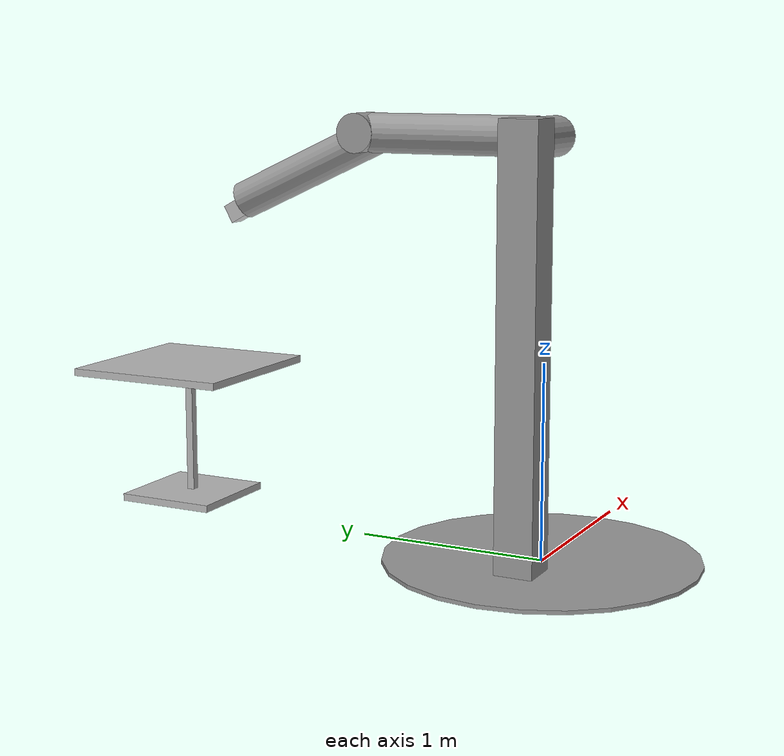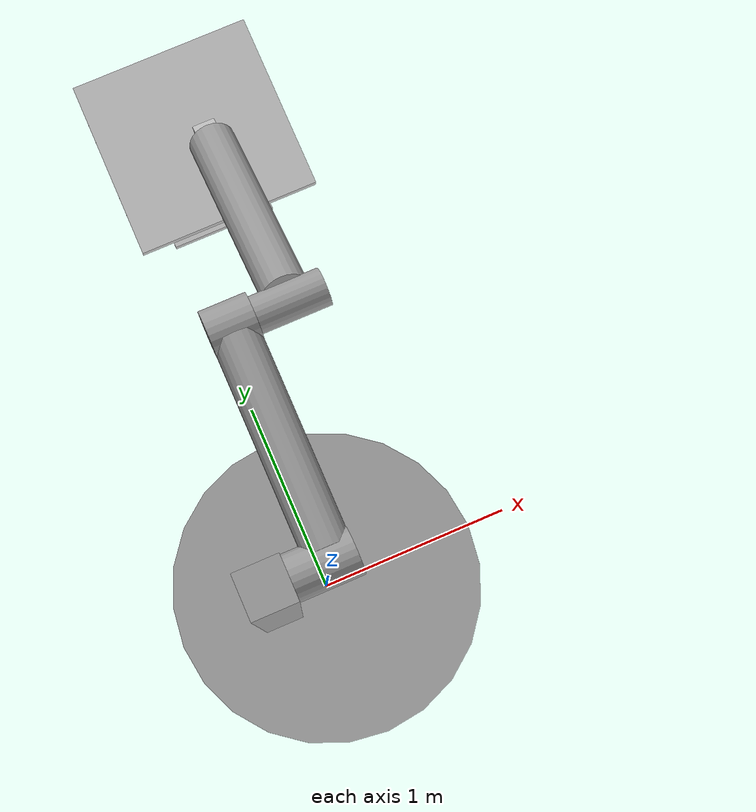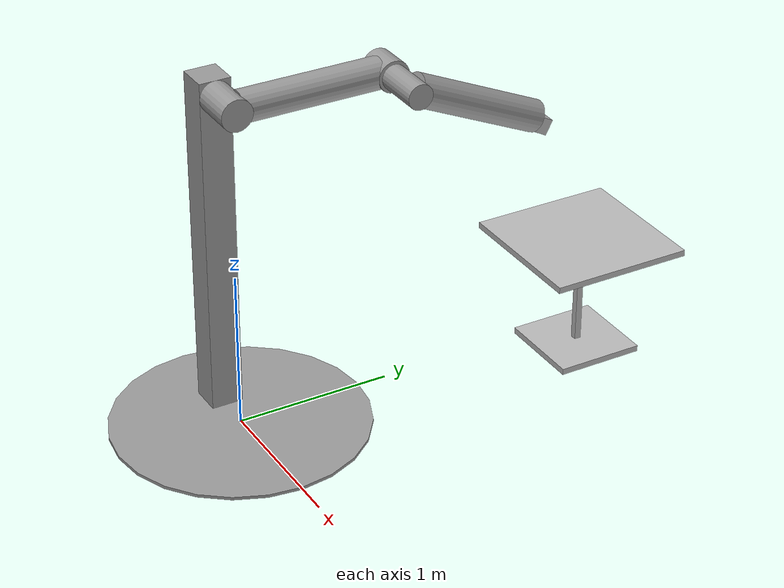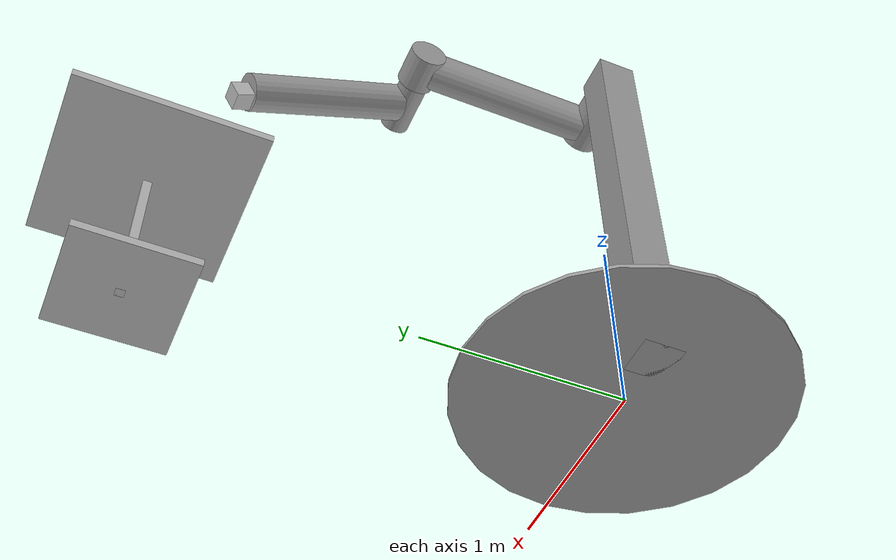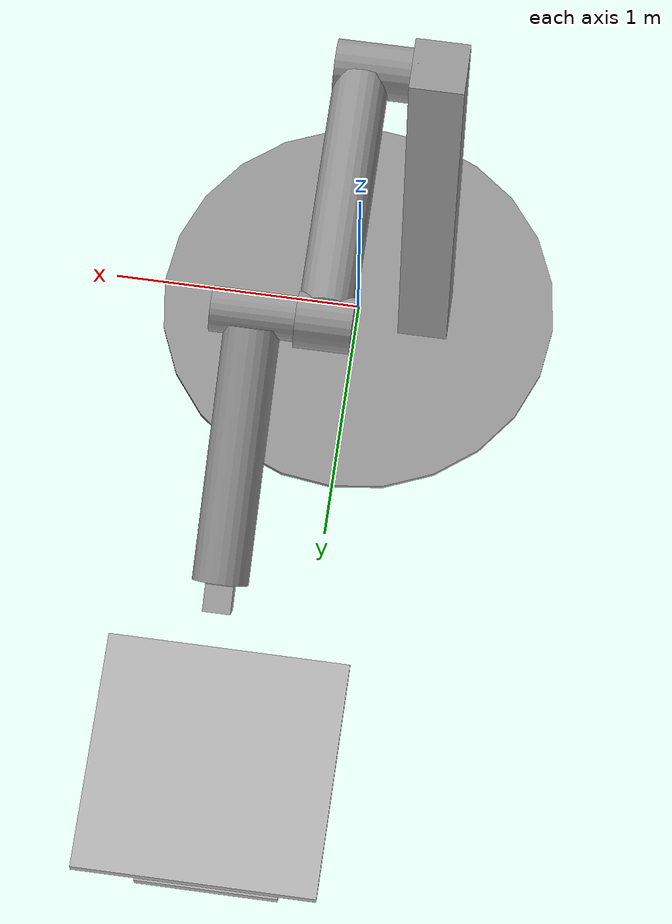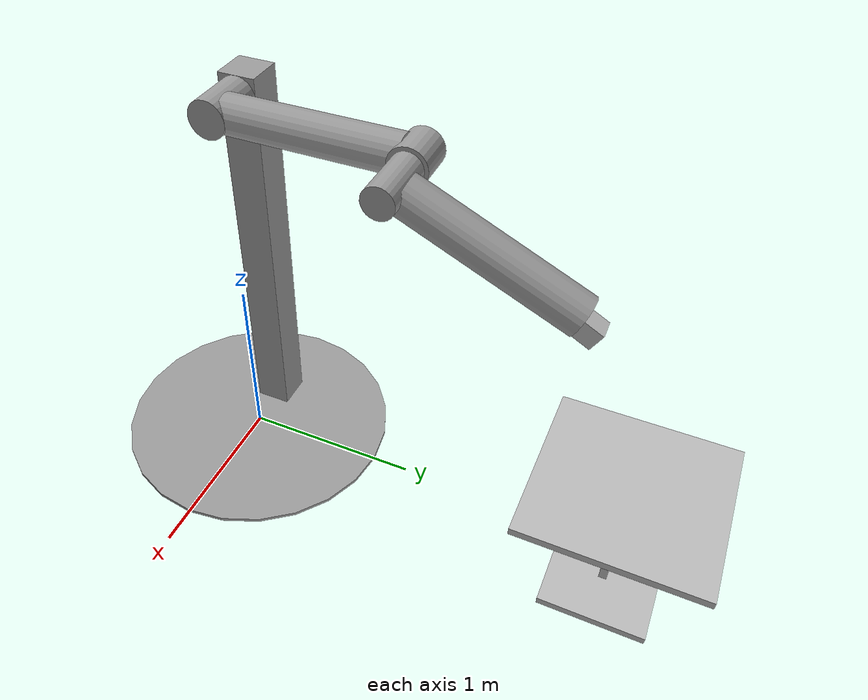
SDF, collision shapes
<?xml version="1.0" ?>
<sdf version="1.5">
  <model name="manipulation_platform">
    <link name="table">
      <pose>0.25 2.25 0 0 0 0</pose>
      <collision name="surface">
        <pose>0 0 0.755 0 0 0</pose>
        <geometry>
          <box>
            <size>0.913 0.913 0.04</size>
          </box>
        </geometry>
      </collision>

      <collision name="column">
        <pose>0 0 0.37 0 0 0</pose>
        <geometry>
          <box>
            <size>0.042 0.042 0.74</size>
          </box>
        </geometry>
      </collision>

      <collision name="base">
        <pose>0 0 0.02 0 0 0</pose>
        <geometry>
          <box>
            <size>0.56 0.56 0.04</size>
          </box>
        </geometry>
      </collision>

      <visual name="visual">
        <geometry>
          <mesh>
            <uri>model://cafe_table/meshes/cafe_table.dae</uri>
          </mesh>
        </geometry>
      </visual>
    </link>
    <link name="base">
      <inertial>
        <mass>100</mass>
      </inertial>
      <visual name="vis_plate_on_ground">
        <pose>0 0 0.01 0 0 0</pose>
        <geometry>
          <cylinder>
            <radius>0.8</radius>
            <length>0.02</length>
          </cylinder>
        </geometry>
        <material>
          <script>
            <uri>file://media/materials/scripts/gazebo.material</uri>
            <name>Gazebo/Grey</name>
          </script>
        </material>
      </visual>
      <visual name="vis_pole">
        <pose>-0.275 0 1.1 0 0 0</pose>
        <geometry>
          <box>
            <size>0.2 0.2 2.2</size>
          </box>
        </geometry>
        <material>
          <script>
            <uri>file://media/materials/scripts/gazebo.material</uri>
            <name>Gazebo/Grey</name>
          </script>
        </material>
      </visual>
      <collision name="col_plate_on_ground">
        <pose>0 0 0.01 0 0 0</pose>
        <geometry>
          <cylinder>
            <radius>0.8</radius>
            <length>0.02</length>
          </cylinder>
        </geometry>
      </collision>
      <collision name="col_pole">
        <pose>-0.275 0 1.1 0 0 0</pose>
        <geometry>
          <box>
            <size>0.2 0.2 2.2</size>
          </box>
        </geometry>
      </collision>
    </link>
    <!-- upper link, length 1, IC -90 degrees -->
    <link name="upper_link">
      <pose>0 0 2.1 -1.5708 0 0</pose>
      <self_collide>0</self_collide>
      <inertial>
        <pose>0 0 0.5 0 0 0</pose>
      </inertial>
      <visual name="vis_upper_joint">
        <pose>-0.05 0 0 0 1.5708 0</pose>
        <geometry>
          <cylinder>
            <radius>0.1</radius>
            <length>0.3</length>
          </cylinder>
        </geometry>
        <material>
          <script>
            <uri>file://media/materials/scripts/gazebo.material</uri>
            <name>Gazebo/Grey</name>
          </script>
        </material>
      </visual>
      <visual name="vis_lower_joint">
        <pose>0 0 1.0 0 1.5708 0</pose>
        <geometry>
          <cylinder>
            <radius>0.1</radius>
            <length>0.2</length>
          </cylinder>
        </geometry>
        <material>
          <script>
            <uri>file://media/materials/scripts/gazebo.material</uri>
            <name>Gazebo/Grey</name>
          </script>
        </material>
      </visual>
      <visual name="vis_cylinder">
        <pose>0 0 0.5 0 0 0</pose>
        <geometry>
          <cylinder>
            <radius>0.1</radius>
            <length>0.9</length>
          </cylinder>
        </geometry>
        <material>
          <script>
            <uri>file://media/materials/scripts/gazebo.material</uri>
            <name>Gazebo/Grey</name>
          </script>
        </material>
      </visual>
      <collision name="col_upper_joint">
        <pose>-0.05 0 0 0 1.5708 0</pose>
        <geometry>
          <cylinder>
            <radius>0.1</radius>
            <length>0.3</length>
          </cylinder>
        </geometry>
      </collision>
      <collision name="col_lower_joint">
        <pose>0 0 1.0 0 1.5708 0</pose>
        <geometry>
          <cylinder>
            <radius>0.1</radius>
            <length>0.2</length>
          </cylinder>
        </geometry>
      </collision>
      <collision name="col_cylinder">
        <pose>0 0 0.5 0 0 0</pose>
        <geometry>
          <cylinder>
            <radius>0.1</radius>
            <length>0.9</length>
          </cylinder>
        </geometry>
      </collision>
    </link>
    <!-- lower link, length 1, IC ~-120 degrees more -->
    <link name="lower_link">
      <pose>0.25 1.0 2.1 -2 0 0</pose>
      <self_collide>0</self_collide>
      <inertial>
        <pose>0 0 0.5 0 0 0</pose>
      </inertial>
      <visual name="vis_lower_joint">
        <pose>0 0 0 0 1.5708 0</pose>
        <geometry>
          <cylinder>
            <radius>0.08</radius>
            <length>0.3</length>
          </cylinder>
        </geometry>
        <material>
          <script>
            <uri>file://media/materials/scripts/gazebo.material</uri>
            <name>Gazebo/Grey</name>
          </script>
        </material>
      </visual>
      <visual name="vis_cylinder">
        <pose>0 0 0.5 0 0 0</pose>
        <geometry>
          <cylinder>
            <radius>0.1</radius>
            <length>0.9</length>
          </cylinder>
        </geometry>
        <material>
          <script>
            <uri>file://media/materials/scripts/gazebo.material</uri>
            <name>Gazebo/Grey</name>
          </script>
        </material>
      </visual>
      <collision name="col_lower_joint">
        <pose>0 0 0 0 1.5708 0</pose>
        <geometry>
          <cylinder>
            <radius>0.08</radius>
            <length>0.3</length>
          </cylinder>
        </geometry>
      </collision>
      <collision name="col_cylinder">
        <pose>0 0 0.5 0 0 0</pose>
        <geometry>
          <cylinder>
            <radius>0.1</radius>
            <length>0.9</length>
          </cylinder>
        </geometry>
      </collision>
    </link>
    <link name="cambox">
      <pose>0.25 1.9 1.65 0.0 0.5 1.57</pose>
      <inertial>
        <mass>0.1</mass>
        <inertia>
          <ixx>0.0</ixx>
          <iyy>0.0</iyy>
          <izz>0.0</izz>
        </inertia>
      </inertial>
      <collision name="collision">
        <geometry>
          <box>
            <size>0.1 0.1 0.1</size>
          </box>
        </geometry>
      </collision>
      <visual name="visual">
        <geometry>
          <box>
            <size>0.1 0.1 0.1</size>
          </box>
        </geometry>
      </visual>
      <sensor name="camera_rgb" type="camera">
        <camera>
          <horizontal_fov>1.047</horizontal_fov>
          <image>
            <width>320</width>
            <height>240</height>
          </image>
          <clip>
            <near>0.1</near>
            <far>100</far>
          </clip>
          <distortion>
            <k1>-0.25</k1>
            <k2>0.12</k2>
            <k3>0.0</k3>
            <p1>-0.00028</p1>
            <p2>-0.00005</p2>
            <center>0.5 0.5</center>
          </distortion>
        </camera>
        <always_on>1</always_on>
        <update_rate>30</update_rate>
        <visualize>true</visualize>
      </sensor>
      <sensor name="camera_depth" type="depth">
        <update_rate>20</update_rate>
        <camera>
          <horizontal_fov>1.047198</horizontal_fov>
          <image>
            <width>640</width>
            <height>480</height>
            <format>R8G8B8</format>
          </image>
          <clip>
            <near>0.05</near>
            <far>3</far>
          </clip>
        </camera>
        <plugin name="camera_plugin" filename="libgazebo_ros_openni_kinect.so">
          <baseline>0.2</baseline>
          <alwaysOn>true</alwaysOn>
          <updateRate>0.0</updateRate>
          <cameraName>camera_ir</cameraName>
          <imageTopicName>/camera/color/image_raw</imageTopicName>
          <cameraInfoTopicName>/camera/color/camera_info</cameraInfoTopicName>
          <depthImageTopicName>/camera/depth/image_raw</depthImageTopicName>
          <depthImageCameraInfoTopicName>/camera/depth/camera_info</depthImageCameraInfoTopicName>
          <pointCloudTopicName>/camera/depth/points</pointCloudTopicName>
          <frameName>camera_link</frameName>
          <pointCloudCutoff>0.5</pointCloudCutoff>
          <pointCloudCutoffMax>3.0</pointCloudCutoffMax>
          <distortionK1>0</distortionK1>
          <distortionK2>0</distortionK2>
          <distortionK3>0</distortionK3>
          <distortionT1>0</distortionT1>
          <distortionT2>0</distortionT2>
          <CxPrime>0</CxPrime>
          <Cx>0</Cx>
          <Cy>0</Cy>
          <focalLength>0</focalLength>
          <hackBaseline>0</hackBaseline>
        </plugin>
      </sensor>
    </link>
    <joint name="upper_joint" type="revolute">
      <parent>base</parent>
      <child>upper_link</child>
      <axis>
        <xyz>1.0 0 0</xyz>
        <use_parent_model_frame>0</use_parent_model_frame>
        <limit>
          <lower>-0.1</lower>
          <upper>1.5</upper>
          <effort>0.1</effort>
          <velocity>1000</velocity>
        </limit>
        <dynamics>
          <spring_reference>0</spring_reference>
          <spring_stiffness>0</spring_stiffness>
          <damping>0</damping>
          <friction>0</friction>
        </dynamics>
      </axis>
    </joint>
    <!-- pin joint for lower link, at origin of child link -->
    <joint name="lower_joint" type="revolute">
      <parent>upper_link</parent>
      <child>lower_link</child>
      <axis>
        <xyz>1.0 0 0</xyz>
        <use_parent_model_frame>0</use_parent_model_frame>
        <limit>
          <lower>-0.2</lower>
          <upper>1.5</upper>
          <effort>0.1</effort>
          <velocity>1000</velocity>
        </limit>
        <dynamics>
          <spring_reference>0</spring_reference>
          <spring_stiffness>0</spring_stiffness>
          <damping>0</damping>
          <friction>0</friction>
        </dynamics>
      </axis>
    </joint>
    <joint name="camera_joint" type="fixed">
      <parent>lower_link</parent>
      <child>cambox</child>
    </joint>
  </model>
</sdf>
